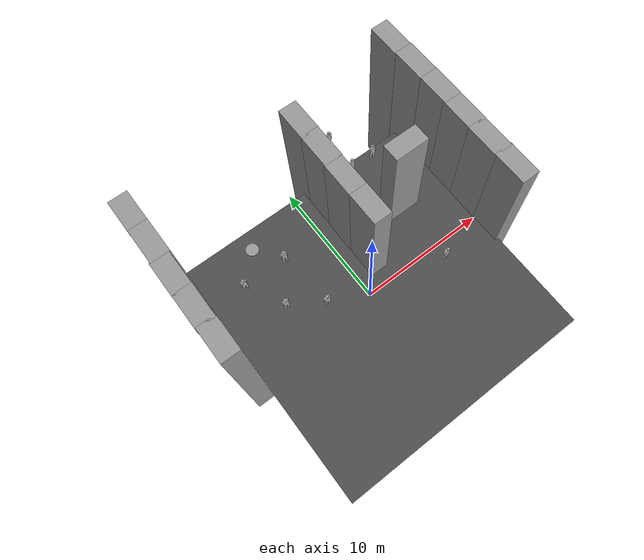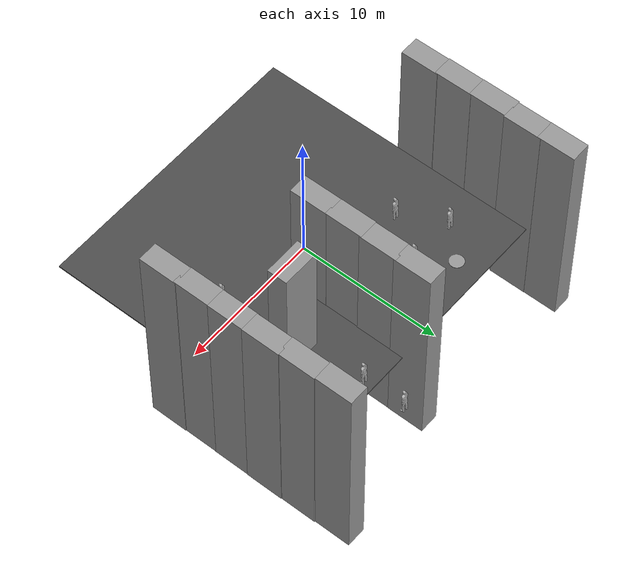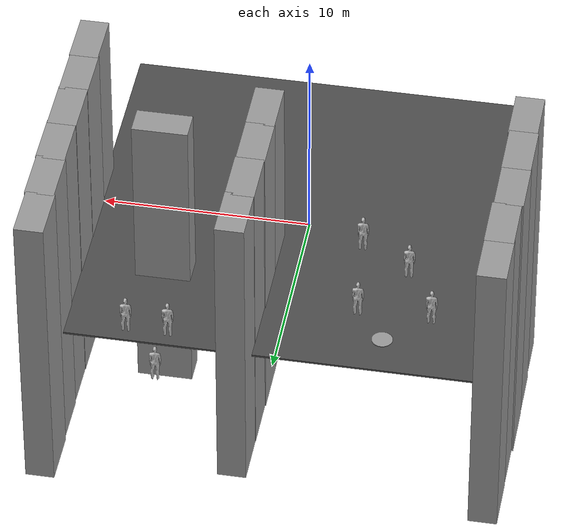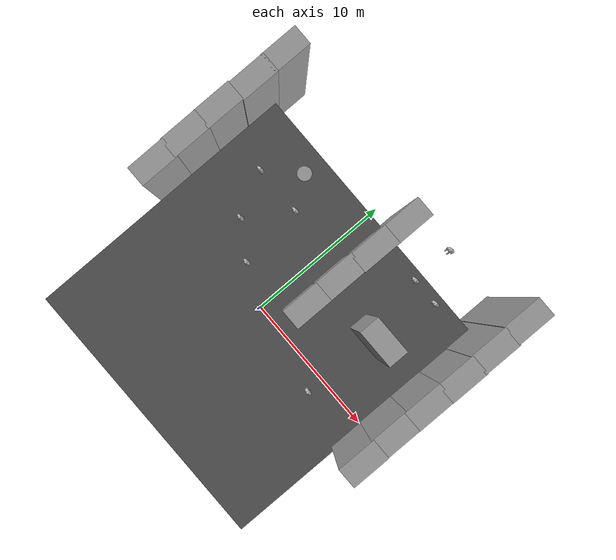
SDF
<sdf version="1.6">
 <model name="indoor_2">
  <link name="link_0_clone_2_clone_clone">
   <pose>-4.81876 7.91543 0.5 0 -0 0</pose>
   <inertial>
    <mass>0.0318769</mass>
    <inertia>
     <ixx>0.00199501</ixx>
     <ixy>0</ixy>
     <ixz>0</ixz>
     <iyy>0.00199501</iyy>
     <iyz>0</iyz>
     <izz>0.00398461</izz>
    </inertia>
   </inertial>
   <visual name="visual">
    <geometry><cylinder><radius>0.5</radius><length>0.0318771</length></cylinder></geometry>
    <material>
     <lighting>1</lighting>
     <script><uri>file://media/materials/scripts/gazebo.material</uri><name>Gazebo/Grey</name></script>
     <ambient>0.3 0.3 0.3 1</ambient>
     <diffuse>0.7 0.7 0.7 1</diffuse>
     <specular>0.01 0.01 0.01 1</specular>
     <emissive>0 0 0 1</emissive>
     <shader type="pixel"/>
    </material>
   </visual>
   <collision name="collision">
    <geometry><cylinder><radius>0.5</radius><length>0.031877</length></cylinder></geometry>
    <surface>
     <friction>
      <ode><mu>1</mu><mu2>1</mu2><fdir1>0 0 0</fdir1><slip1>0</slip1><slip2>0</slip2></ode>
      <torsional>
       <coefficient>1</coefficient>
       <patch_radius>0</patch_radius>
       <surface_radius>0</surface_radius>
       <use_patch_radius>1</use_patch_radius>
       <ode><slip>0</slip></ode>
      </torsional>
     </friction>
     <bounce><restitution_coefficient>0</restitution_coefficient><threshold>1e+06</threshold></bounce>
     <contact>
      <collide_without_contact>0</collide_without_contact>
      <collide_without_contact_bitmask>1</collide_without_contact_bitmask>
      <collide_bitmask>1</collide_bitmask>
      <ode>
       <soft_cfm>0</soft_cfm>
       <soft_erp>0.2</soft_erp>
       <kp>1e+13</kp>
       <kd>1</kd>
       <max_vel>0.01</max_vel>
       <min_depth>0</min_depth>
      </ode>
      <bullet>
       <split_impulse>1</split_impulse>
       <split_impulse_penetration_threshold>-0.01</split_impulse_penetration_threshold>
       <soft_cfm>0</soft_cfm>
       <soft_erp>0.2</soft_erp>
       <kp>1e+13</kp>
       <kd>1</kd>
      </bullet>
     </contact>
    </surface>
   </collision>
  </link>
  <link name="link_clone">
   <pose>-10.3255 8.50224 1.4 0 -0 0</pose>
   <inertial>
    <inertia><ixx>nan</ixx><ixy>0</ixy><ixz>0</ixz><iyy>nan</iyy><iyz>0</iyz><izz>nan</izz></inertia>
    <mass>0</mass>
   </inertial>
   <visual name="visual">
    <cast_shadows>0</cast_shadows>
    <geometry><box><size>1.37568 2.64508 15.4314</size></box></geometry>
    <material>
     <script>
      <uri>model://grey_wall/materials/scripts</uri>
      <uri>model://grey_wall/materials/textures</uri>
      <name>vrc/grey_wall</name>
     </script>
     <ambient>1 1 1 1</ambient>
     <diffuse>1 1 1 1</diffuse>
     <specular>0 0 0 1</specular>
     <emissive>0 0 0 1</emissive>
     <shader type="pixel"/>
    </material>
   </visual>
   <collision name="collision">
    <geometry><box><size>1.37568 2.64508 15.4314</size></box></geometry>
    <surface>
     <friction>
      <ode><mu>1</mu><mu2>1</mu2><fdir1>0 0 0</fdir1><slip1>0</slip1><slip2>0</slip2></ode>
      <torsional>
       <coefficient>1</coefficient>
       <patch_radius>0</patch_radius>
       <surface_radius>0</surface_radius>
       <use_patch_radius>1</use_patch_radius>
       <ode><slip>0</slip></ode>
      </torsional>
     </friction>
     <bounce><restitution_coefficient>0</restitution_coefficient><threshold>1e+06</threshold></bounce>
     <contact>
      <collide_without_contact>0</collide_without_contact>
      <collide_without_contact_bitmask>1</collide_without_contact_bitmask>
      <collide_bitmask>1</collide_bitmask>
      <ode>
       <soft_cfm>0</soft_cfm>
       <soft_erp>0.2</soft_erp>
       <kp>1e+13</kp>
       <kd>1</kd>
       <max_vel>0.01</max_vel>
       <min_depth>0</min_depth>
      </ode>
      <bullet>
       <split_impulse>1</split_impulse>
       <split_impulse_penetration_threshold>-0.01</split_impulse_penetration_threshold>
       <soft_cfm>0</soft_cfm>
       <soft_erp>0.2</soft_erp>
       <kp>1e+13</kp>
       <kd>1</kd>
      </bullet>
     </contact>
    </surface>
   </collision>
  </link>
  <link name="link_clone_0">
   <pose>-10.4018 5.91543 1.4 0 -0 0</pose>
   <inertial>
    <inertia><ixx>nan</ixx><ixy>0</ixy><ixz>0</ixz><iyy>nan</iyy><iyz>0</iyz><izz>nan</izz></inertia>
    <mass>0</mass>
   </inertial>
   <visual name="visual">
    <cast_shadows>0</cast_shadows>
    <geometry><box><size>1.37568 2.64508 15.4314</size></box></geometry>
    <material>
     <script>
      <uri>model://grey_wall/materials/scripts</uri>
      <uri>model://grey_wall/materials/textures</uri>
      <name>vrc/grey_wall</name>
     </script>
     <ambient>1 1 1 1</ambient>
     <diffuse>1 1 1 1</diffuse>
     <specular>0 0 0 1</specular>
     <emissive>0 0 0 1</emissive>
     <shader type="pixel"/>
    </material>
   </visual>
   <collision name="collision">
    <geometry><box><size>1.37568 2.64508 15.4314</size></box></geometry>
    <surface>
     <friction>
      <ode><mu>1</mu><mu2>1</mu2><fdir1>0 0 0</fdir1><slip1>0</slip1><slip2>0</slip2></ode>
      <torsional>
       <coefficient>1</coefficient>
       <patch_radius>0</patch_radius>
       <surface_radius>0</surface_radius>
       <use_patch_radius>1</use_patch_radius>
       <ode><slip>0</slip></ode>
      </torsional>
     </friction>
     <bounce><restitution_coefficient>0</restitution_coefficient><threshold>1e+06</threshold></bounce>
     <contact>
      <collide_without_contact>0</collide_without_contact>
      <collide_without_contact_bitmask>1</collide_without_contact_bitmask>
      <collide_bitmask>1</collide_bitmask>
      <ode>
       <soft_cfm>0</soft_cfm>
       <soft_erp>0.2</soft_erp>
       <kp>1e+13</kp>
       <kd>1</kd>
       <max_vel>0.01</max_vel>
       <min_depth>0</min_depth>
      </ode>
      <bullet>
       <split_impulse>1</split_impulse>
       <split_impulse_penetration_threshold>-0.01</split_impulse_penetration_threshold>
       <soft_cfm>0</soft_cfm>
       <soft_erp>0.2</soft_erp>
       <kp>1e+13</kp>
       <kd>1</kd>
      </bullet>
     </contact>
    </surface>
   </collision>
  </link>
  <link name="link_clone_1">
   <pose>-10.3874 3.38384 1.4 0 -0 0</pose>
   <inertial>
    <inertia><ixx>nan</ixx><ixy>0</ixy><ixz>0</ixz><iyy>nan</iyy><iyz>0</iyz><izz>nan</izz></inertia>
    <mass>0</mass>
   </inertial>
   <visual name="visual">
    <cast_shadows>0</cast_shadows>
    <geometry><box><size>1.37568 2.64508 15.4314</size></box></geometry>
    <material>
     <script>
      <uri>model://grey_wall/materials/scripts</uri>
      <uri>model://grey_wall/materials/textures</uri>
      <name>vrc/grey_wall</name>
     </script>
     <ambient>1 1 1 1</ambient>
     <diffuse>1 1 1 1</diffuse>
     <specular>0 0 0 1</specular>
     <emissive>0 0 0 1</emissive>
     <shader type="pixel"/>
    </material>
   </visual>
   <collision name="collision">
    <geometry><box><size>1.37568 2.64508 15.4314</size></box></geometry>
    <surface>
     <friction>
      <ode><mu>1</mu><mu2>1</mu2><fdir1>0 0 0</fdir1><slip1>0</slip1><slip2>0</slip2></ode>
      <torsional>
       <coefficient>1</coefficient>
       <patch_radius>0</patch_radius>
       <surface_radius>0</surface_radius>
       <use_patch_radius>1</use_patch_radius>
       <ode><slip>0</slip></ode>
      </torsional>
     </friction>
     <bounce><restitution_coefficient>0</restitution_coefficient><threshold>1e+06</threshold></bounce>
     <contact>
      <collide_without_contact>0</collide_without_contact>
      <collide_without_contact_bitmask>1</collide_without_contact_bitmask>
      <collide_bitmask>1</collide_bitmask>
      <ode>
       <soft_cfm>0</soft_cfm>
       <soft_erp>0.2</soft_erp>
       <kp>1e+13</kp>
       <kd>1</kd>
       <max_vel>0.01</max_vel>
       <min_depth>0</min_depth>
      </ode>
      <bullet>
       <split_impulse>1</split_impulse>
       <split_impulse_penetration_threshold>-0.01</split_impulse_penetration_threshold>
       <soft_cfm>0</soft_cfm>
       <soft_erp>0.2</soft_erp>
       <kp>1e+13</kp>
       <kd>1</kd>
      </bullet>
     </contact>
    </surface>
   </collision>
  </link>
  <link name="link_clone_16">
   <pose>-10.3392 10.9154 1.4 0 -0 0</pose>
   <inertial>
    <inertia><ixx>nan</ixx><ixy>0</ixy><ixz>0</ixz><iyy>nan</iyy><iyz>0</iyz><izz>nan</izz></inertia>
    <mass>0</mass>
   </inertial>
   <visual name="visual">
    <cast_shadows>0</cast_shadows>
    <geometry><box><size>1.37568 2.64508 15.4314</size></box></geometry>
    <material>
     <script>
      <uri>model://grey_wall/materials/scripts</uri>
      <uri>model://grey_wall/materials/textures</uri>
      <name>vrc/grey_wall</name>
     </script>
     <ambient>1 1 1 1</ambient>
     <diffuse>1 1 1 1</diffuse>
     <specular>0 0 0 1</specular>
     <emissive>0 0 0 1</emissive>
     <shader type="pixel"/>
    </material>
   </visual>
   <collision name="collision">
    <geometry><box><size>1.37568 2.64508 15.4314</size></box></geometry>
    <surface>
     <friction>
      <ode><mu>1</mu><mu2>1</mu2><fdir1>0 0 0</fdir1><slip1>0</slip1><slip2>0</slip2></ode>
      <torsional>
       <coefficient>1</coefficient>
       <patch_radius>0</patch_radius>
       <surface_radius>0</surface_radius>
       <use_patch_radius>1</use_patch_radius>
       <ode><slip>0</slip></ode>
      </torsional>
     </friction>
     <bounce><restitution_coefficient>0</restitution_coefficient><threshold>1e+06</threshold></bounce>
     <contact>
      <collide_without_contact>0</collide_without_contact>
      <collide_without_contact_bitmask>1</collide_without_contact_bitmask>
      <collide_bitmask>1</collide_bitmask>
      <ode>
       <soft_cfm>0</soft_cfm>
       <soft_erp>0.2</soft_erp>
       <kp>1e+13</kp>
       <kd>1</kd>
       <max_vel>0.01</max_vel>
       <min_depth>0</min_depth>
      </ode>
      <bullet>
       <split_impulse>1</split_impulse>
       <split_impulse_penetration_threshold>-0.01</split_impulse_penetration_threshold>
       <soft_cfm>0</soft_cfm>
       <soft_erp>0.2</soft_erp>
       <kp>1e+13</kp>
       <kd>1</kd>
      </bullet>
     </contact>
    </surface>
   </collision>
  </link>
  <link name="link_clone_17_clone_clone_0_clone">
   <pose>6.18124 4.331 1.4 0 0 -1.56938</pose>
   <inertial>
    <inertia><ixx>nan</ixx><ixy>0</ixy><ixz>0</ixz><iyy>nan</iyy><iyz>0</iyz><izz>nan</izz></inertia>
    <mass>0</mass>
   </inertial>
   <visual name="visual">
    <cast_shadows>0</cast_shadows>
    <geometry><box><size>1.37568 2.64508 15.4314</size></box></geometry>
    <material>
     <script>
      <uri>model://grey_wall/materials/scripts</uri>
      <uri>model://grey_wall/materials/textures</uri>
      <name>vrc/grey_wall</name>
     </script>
     <ambient>1 1 1 1</ambient>
     <diffuse>1 1 1 1</diffuse>
     <specular>0 0 0 1</specular>
     <emissive>0 0 0 1</emissive>
     <shader type="pixel"/>
    </material>
   </visual>
   <collision name="collision">
    <geometry><box><size>1.37568 2.64508 15.4314</size></box></geometry>
    <surface>
     <friction>
      <ode><mu>1</mu><mu2>1</mu2><fdir1>0 0 0</fdir1><slip1>0</slip1><slip2>0</slip2></ode>
      <torsional>
       <coefficient>1</coefficient>
       <patch_radius>0</patch_radius>
       <surface_radius>0</surface_radius>
       <use_patch_radius>1</use_patch_radius>
       <ode><slip>0</slip></ode>
      </torsional>
     </friction>
     <bounce><restitution_coefficient>0</restitution_coefficient><threshold>1e+06</threshold></bounce>
     <contact>
      <collide_without_contact>0</collide_without_contact>
      <collide_without_contact_bitmask>1</collide_without_contact_bitmask>
      <collide_bitmask>1</collide_bitmask>
      <ode>
       <soft_cfm>0</soft_cfm>
       <soft_erp>0.2</soft_erp>
       <kp>1e+13</kp>
       <kd>1</kd>
       <max_vel>0.01</max_vel>
       <min_depth>0</min_depth>
      </ode>
      <bullet>
       <split_impulse>1</split_impulse>
       <split_impulse_penetration_threshold>-0.01</split_impulse_penetration_threshold>
       <soft_cfm>0</soft_cfm>
       <soft_erp>0.2</soft_erp>
       <kp>1e+13</kp>
       <kd>1</kd>
      </bullet>
     </contact>
    </surface>
   </collision>
  </link>
  <link name="link_clone_2">
   <pose>-10.3438 0.915432 1.4 0 -0 0</pose>
   <inertial>
    <inertia><ixx>nan</ixx><ixy>0</ixy><ixz>0</ixz><iyy>nan</iyy><iyz>0</iyz><izz>nan</izz></inertia>
    <mass>0</mass>
   </inertial>
   <visual name="visual">
    <cast_shadows>0</cast_shadows>
    <geometry><box><size>1.37568 2.64508 15.4314</size></box></geometry>
    <material>
     <script>
      <uri>model://grey_wall/materials/scripts</uri>
      <uri>model://grey_wall/materials/textures</uri>
      <name>vrc/grey_wall</name>
     </script>
     <ambient>1 1 1 1</ambient>
     <diffuse>1 1 1 1</diffuse>
     <specular>0 0 0 1</specular>
     <emissive>0 0 0 1</emissive>
     <shader type="pixel"/>
    </material>
   </visual>
   <collision name="collision">
    <geometry><box><size>1.37568 2.64508 15.4314</size></box></geometry>
    <surface>
     <friction>
      <ode><mu>1</mu><mu2>1</mu2><fdir1>0 0 0</fdir1><slip1>0</slip1><slip2>0</slip2></ode>
      <torsional>
       <coefficient>1</coefficient>
       <patch_radius>0</patch_radius>
       <surface_radius>0</surface_radius>
       <use_patch_radius>1</use_patch_radius>
       <ode><slip>0</slip></ode>
      </torsional>
     </friction>
     <bounce><restitution_coefficient>0</restitution_coefficient><threshold>1e+06</threshold></bounce>
     <contact>
      <collide_without_contact>0</collide_without_contact>
      <collide_without_contact_bitmask>1</collide_without_contact_bitmask>
      <collide_bitmask>1</collide_bitmask>
      <ode>
       <soft_cfm>0</soft_cfm>
       <soft_erp>0.2</soft_erp>
       <kp>1e+13</kp>
       <kd>1</kd>
       <max_vel>0.01</max_vel>
       <min_depth>0</min_depth>
      </ode>
      <bullet>
       <split_impulse>1</split_impulse>
       <split_impulse_penetration_threshold>-0.01</split_impulse_penetration_threshold>
       <soft_cfm>0</soft_cfm>
       <soft_erp>0.2</soft_erp>
       <kp>1e+13</kp>
       <kd>1</kd>
      </bullet>
     </contact>
    </surface>
   </collision>
  </link>
  <link name="link_clone_6_clone_5_clone">
   <pose>1.75585 9.91543 1.4 0 -0 0</pose>
   <inertial>
    <inertia><ixx>nan</ixx><ixy>0</ixy><ixz>0</ixz><iyy>nan</iyy><iyz>0</iyz><izz>nan</izz></inertia>
    <mass>0</mass>
   </inertial>
   <visual name="visual">
    <cast_shadows>0</cast_shadows>
    <geometry><box><size>1.37568 2.64508 15.4314</size></box></geometry>
    <material>
     <script>
      <uri>model://grey_wall/materials/scripts</uri>
      <uri>model://grey_wall/materials/textures</uri>
      <name>vrc/grey_wall</name>
     </script>
     <ambient>1 1 1 1</ambient>
     <diffuse>1 1 1 1</diffuse>
     <specular>0 0 0 1</specular>
     <emissive>0 0 0 1</emissive>
     <shader type="pixel"/>
    </material>
   </visual>
   <collision name="collision">
    <geometry><box><size>1.37568 2.64508 15.4314</size></box></geometry>
    <surface>
     <friction>
      <ode><mu>1</mu><mu2>1</mu2><fdir1>0 0 0</fdir1><slip1>0</slip1><slip2>0</slip2></ode>
      <torsional>
       <coefficient>1</coefficient>
       <patch_radius>0</patch_radius>
       <surface_radius>0</surface_radius>
       <use_patch_radius>1</use_patch_radius>
       <ode><slip>0</slip></ode>
      </torsional>
     </friction>
     <bounce><restitution_coefficient>0</restitution_coefficient><threshold>1e+06</threshold></bounce>
     <contact>
      <collide_without_contact>0</collide_without_contact>
      <collide_without_contact_bitmask>1</collide_without_contact_bitmask>
      <collide_bitmask>1</collide_bitmask>
      <ode>
       <soft_cfm>0</soft_cfm>
       <soft_erp>0.2</soft_erp>
       <kp>1e+13</kp>
       <kd>1</kd>
       <max_vel>0.01</max_vel>
       <min_depth>0</min_depth>
      </ode>
      <bullet>
       <split_impulse>1</split_impulse>
       <split_impulse_penetration_threshold>-0.01</split_impulse_penetration_threshold>
       <soft_cfm>0</soft_cfm>
       <soft_erp>0.2</soft_erp>
       <kp>1e+13</kp>
       <kd>1</kd>
      </bullet>
     </contact>
    </surface>
   </collision>
  </link>
  <link name="link_clone_6_clone_5_clone_0">
   <pose>1.74107 7.42836 1.4 0 -0 0</pose>
   <inertial>
    <inertia><ixx>nan</ixx><ixy>0</ixy><ixz>0</ixz><iyy>nan</iyy><iyz>0</iyz><izz>nan</izz></inertia>
    <mass>0</mass>
   </inertial>
   <visual name="visual">
    <cast_shadows>0</cast_shadows>
    <geometry><box><size>1.37568 2.64508 15.4314</size></box></geometry>
    <material>
     <script>
      <uri>model://grey_wall/materials/scripts</uri>
      <uri>model://grey_wall/materials/textures</uri>
      <name>vrc/grey_wall</name>
     </script>
     <ambient>1 1 1 1</ambient>
     <diffuse>1 1 1 1</diffuse>
     <specular>0 0 0 1</specular>
     <emissive>0 0 0 1</emissive>
     <shader type="pixel"/>
    </material>
   </visual>
   <collision name="collision">
    <geometry><box><size>1.37568 2.64508 15.4314</size></box></geometry>
    <surface>
     <friction>
      <ode><mu>1</mu><mu2>1</mu2><fdir1>0 0 0</fdir1><slip1>0</slip1><slip2>0</slip2></ode>
      <torsional>
       <coefficient>1</coefficient>
       <patch_radius>0</patch_radius>
       <surface_radius>0</surface_radius>
       <use_patch_radius>1</use_patch_radius>
       <ode><slip>0</slip></ode>
      </torsional>
     </friction>
     <bounce><restitution_coefficient>0</restitution_coefficient><threshold>1e+06</threshold></bounce>
     <contact>
      <collide_without_contact>0</collide_without_contact>
      <collide_without_contact_bitmask>1</collide_without_contact_bitmask>
      <collide_bitmask>1</collide_bitmask>
      <ode>
       <soft_cfm>0</soft_cfm>
       <soft_erp>0.2</soft_erp>
       <kp>1e+13</kp>
       <kd>1</kd>
       <max_vel>0.01</max_vel>
       <min_depth>0</min_depth>
      </ode>
      <bullet>
       <split_impulse>1</split_impulse>
       <split_impulse_penetration_threshold>-0.01</split_impulse_penetration_threshold>
       <soft_cfm>0</soft_cfm>
       <soft_erp>0.2</soft_erp>
       <kp>1e+13</kp>
       <kd>1</kd>
      </bullet>
     </contact>
    </surface>
   </collision>
  </link>
  <link name="link_clone_6_clone_5_clone_0_clone">
   <pose>1.70315 4.91543 1.4 0 -0 0</pose>
   <inertial>
    <inertia><ixx>nan</ixx><ixy>0</ixy><ixz>0</ixz><iyy>nan</iyy><iyz>0</iyz><izz>nan</izz></inertia>
    <mass>0</mass>
   </inertial>
   <visual name="visual">
    <cast_shadows>0</cast_shadows>
    <geometry><box><size>1.37568 2.64508 15.4314</size></box></geometry>
    <material>
     <script>
      <uri>model://grey_wall/materials/scripts</uri>
      <uri>model://grey_wall/materials/textures</uri>
      <name>vrc/grey_wall</name>
     </script>
     <ambient>1 1 1 1</ambient>
     <diffuse>1 1 1 1</diffuse>
     <specular>0 0 0 1</specular>
     <emissive>0 0 0 1</emissive>
     <shader type="pixel"/>
    </material>
   </visual>
   <collision name="collision">
    <geometry><box><size>1.37568 2.64508 15.4314</size></box></geometry>
    <surface>
     <friction>
      <ode><mu>1</mu><mu2>1</mu2><fdir1>0 0 0</fdir1><slip1>0</slip1><slip2>0</slip2></ode>
      <torsional>
       <coefficient>1</coefficient>
       <patch_radius>0</patch_radius>
       <surface_radius>0</surface_radius>
       <use_patch_radius>1</use_patch_radius>
       <ode><slip>0</slip></ode>
      </torsional>
     </friction>
     <bounce><restitution_coefficient>0</restitution_coefficient><threshold>1e+06</threshold></bounce>
     <contact>
      <collide_without_contact>0</collide_without_contact>
      <collide_without_contact_bitmask>1</collide_without_contact_bitmask>
      <collide_bitmask>1</collide_bitmask>
      <ode>
       <soft_cfm>0</soft_cfm>
       <soft_erp>0.2</soft_erp>
       <kp>1e+13</kp>
       <kd>1</kd>
       <max_vel>0.01</max_vel>
       <min_depth>0</min_depth>
      </ode>
      <bullet>
       <split_impulse>1</split_impulse>
       <split_impulse_penetration_threshold>-0.01</split_impulse_penetration_threshold>
       <soft_cfm>0</soft_cfm>
       <soft_erp>0.2</soft_erp>
       <kp>1e+13</kp>
       <kd>1</kd>
      </bullet>
     </contact>
    </surface>
   </collision>
  </link>
  <link name="link_clone_6_clone_5_clone_0_clone_0">
   <pose>1.71262 2.36889 1.4 0 -0 0</pose>
   <inertial>
    <inertia><ixx>nan</ixx><ixy>0</ixy><ixz>0</ixz><iyy>nan</iyy><iyz>0</iyz><izz>nan</izz></inertia>
    <mass>0</mass>
   </inertial>
   <visual name="visual">
    <cast_shadows>0</cast_shadows>
    <geometry><box><size>1.37568 2.64508 15.4314</size></box></geometry>
    <material>
     <script>
      <uri>model://grey_wall/materials/scripts</uri>
      <uri>model://grey_wall/materials/textures</uri>
      <name>vrc/grey_wall</name>
     </script>
     <ambient>1 1 1 1</ambient>
     <diffuse>1 1 1 1</diffuse>
     <specular>0 0 0 1</specular>
     <emissive>0 0 0 1</emissive>
     <shader type="pixel"/>
    </material>
   </visual>
   <collision name="collision">
    <geometry><box><size>1.37568 2.64508 15.4314</size></box></geometry>
    <surface>
     <friction>
      <ode><mu>1</mu><mu2>1</mu2><fdir1>0 0 0</fdir1><slip1>0</slip1><slip2>0</slip2></ode>
      <torsional>
       <coefficient>1</coefficient>
       <patch_radius>0</patch_radius>
       <surface_radius>0</surface_radius>
       <use_patch_radius>1</use_patch_radius>
       <ode><slip>0</slip></ode>
      </torsional>
     </friction>
     <bounce><restitution_coefficient>0</restitution_coefficient><threshold>1e+06</threshold></bounce>
     <contact>
      <collide_without_contact>0</collide_without_contact>
      <collide_without_contact_bitmask>1</collide_without_contact_bitmask>
      <collide_bitmask>1</collide_bitmask>
      <ode>
       <soft_cfm>0</soft_cfm>
       <soft_erp>0.2</soft_erp>
       <kp>1e+13</kp>
       <kd>1</kd>
       <max_vel>0.01</max_vel>
       <min_depth>0</min_depth>
      </ode>
      <bullet>
       <split_impulse>1</split_impulse>
       <split_impulse_penetration_threshold>-0.01</split_impulse_penetration_threshold>
       <soft_cfm>0</soft_cfm>
       <soft_erp>0.2</soft_erp>
       <kp>1e+13</kp>
       <kd>1</kd>
      </bullet>
     </contact>
    </surface>
   </collision>
  </link>
  <link name="link_clone_6_clone_clone_1">
   <pose>10.7587 -1.08457 1.4 0 -0 0</pose>
   <inertial>
    <inertia><ixx>nan</ixx><ixy>0</ixy><ixz>0</ixz><iyy>nan</iyy><iyz>0</iyz><izz>nan</izz></inertia>
    <mass>0</mass>
   </inertial>
   <visual name="visual">
    <cast_shadows>0</cast_shadows>
    <geometry><box><size>1.37568 2.64508 15.4314</size></box></geometry>
    <material>
     <script>
      <uri>model://grey_wall/materials/scripts</uri>
      <uri>model://grey_wall/materials/textures</uri>
      <name>vrc/grey_wall</name>
     </script>
     <ambient>1 1 1 1</ambient>
     <diffuse>1 1 1 1</diffuse>
     <specular>0 0 0 1</specular>
     <emissive>0 0 0 1</emissive>
     <shader type="pixel"/>
    </material>
   </visual>
   <collision name="collision">
    <geometry><box><size>1.37568 2.64508 15.4314</size></box></geometry>
    <surface>
     <friction>
      <ode><mu>1</mu><mu2>1</mu2><fdir1>0 0 0</fdir1><slip1>0</slip1><slip2>0</slip2></ode>
      <torsional>
       <coefficient>1</coefficient>
       <patch_radius>0</patch_radius>
       <surface_radius>0</surface_radius>
       <use_patch_radius>1</use_patch_radius>
       <ode><slip>0</slip></ode>
      </torsional>
     </friction>
     <bounce><restitution_coefficient>0</restitution_coefficient><threshold>1e+06</threshold></bounce>
     <contact>
      <collide_without_contact>0</collide_without_contact>
      <collide_without_contact_bitmask>1</collide_without_contact_bitmask>
      <collide_bitmask>1</collide_bitmask>
      <ode>
       <soft_cfm>0</soft_cfm>
       <soft_erp>0.2</soft_erp>
       <kp>1e+13</kp>
       <kd>1</kd>
       <max_vel>0.01</max_vel>
       <min_depth>0</min_depth>
      </ode>
      <bullet>
       <split_impulse>1</split_impulse>
       <split_impulse_penetration_threshold>-0.01</split_impulse_penetration_threshold>
       <soft_cfm>0</soft_cfm>
       <soft_erp>0.2</soft_erp>
       <kp>1e+13</kp>
       <kd>1</kd>
      </bullet>
     </contact>
    </surface>
   </collision>
  </link>
  <link name="link_clone_6_clone_clone_2">
   <pose>10.7249 1.40828 1.4 0 -0 0</pose>
   <inertial>
    <inertia><ixx>nan</ixx><ixy>0</ixy><ixz>0</ixz><iyy>nan</iyy><iyz>0</iyz><izz>nan</izz></inertia>
    <mass>0</mass>
   </inertial>
   <visual name="visual">
    <cast_shadows>0</cast_shadows>
    <geometry><box><size>1.37568 2.64508 15.4314</size></box></geometry>
    <material>
     <script>
      <uri>model://grey_wall/materials/scripts</uri>
      <uri>model://grey_wall/materials/textures</uri>
      <name>vrc/grey_wall</name>
     </script>
     <ambient>1 1 1 1</ambient>
     <diffuse>1 1 1 1</diffuse>
     <specular>0 0 0 1</specular>
     <emissive>0 0 0 1</emissive>
     <shader type="pixel"/>
    </material>
   </visual>
   <collision name="collision">
    <geometry><box><size>1.37568 2.64508 15.4314</size></box></geometry>
    <surface>
     <friction>
      <ode><mu>1</mu><mu2>1</mu2><fdir1>0 0 0</fdir1><slip1>0</slip1><slip2>0</slip2></ode>
      <torsional>
       <coefficient>1</coefficient>
       <patch_radius>0</patch_radius>
       <surface_radius>0</surface_radius>
       <use_patch_radius>1</use_patch_radius>
       <ode><slip>0</slip></ode>
      </torsional>
     </friction>
     <bounce><restitution_coefficient>0</restitution_coefficient><threshold>1e+06</threshold></bounce>
     <contact>
      <collide_without_contact>0</collide_without_contact>
      <collide_without_contact_bitmask>1</collide_without_contact_bitmask>
      <collide_bitmask>1</collide_bitmask>
      <ode>
       <soft_cfm>0</soft_cfm>
       <soft_erp>0.2</soft_erp>
       <kp>1e+13</kp>
       <kd>1</kd>
       <max_vel>0.01</max_vel>
       <min_depth>0</min_depth>
      </ode>
      <bullet>
       <split_impulse>1</split_impulse>
       <split_impulse_penetration_threshold>-0.01</split_impulse_penetration_threshold>
       <soft_cfm>0</soft_cfm>
       <soft_erp>0.2</soft_erp>
       <kp>1e+13</kp>
       <kd>1</kd>
      </bullet>
     </contact>
    </surface>
   </collision>
  </link>
  <link name="link_clone_6_clone_clone_3">
   <pose>10.7387 3.91543 1.4 0 -0 0</pose>
   <inertial>
    <inertia><ixx>nan</ixx><ixy>0</ixy><ixz>0</ixz><iyy>nan</iyy><iyz>0</iyz><izz>nan</izz></inertia>
    <mass>0</mass>
   </inertial>
   <visual name="visual">
    <cast_shadows>0</cast_shadows>
    <geometry><box><size>1.37568 2.64508 15.4314</size></box></geometry>
    <material>
     <script>
      <uri>model://grey_wall/materials/scripts</uri>
      <uri>model://grey_wall/materials/textures</uri>
      <name>vrc/grey_wall</name>
     </script>
     <ambient>1 1 1 1</ambient>
     <diffuse>1 1 1 1</diffuse>
     <specular>0 0 0 1</specular>
     <emissive>0 0 0 1</emissive>
     <shader type="pixel"/>
    </material>
   </visual>
   <collision name="collision">
    <geometry><box><size>1.37568 2.64508 15.4314</size></box></geometry>
    <surface>
     <friction>
      <ode><mu>1</mu><mu2>1</mu2><fdir1>0 0 0</fdir1><slip1>0</slip1><slip2>0</slip2></ode>
      <torsional>
       <coefficient>1</coefficient>
       <patch_radius>0</patch_radius>
       <surface_radius>0</surface_radius>
       <use_patch_radius>1</use_patch_radius>
       <ode><slip>0</slip></ode>
      </torsional>
     </friction>
     <bounce><restitution_coefficient>0</restitution_coefficient><threshold>1e+06</threshold></bounce>
     <contact>
      <collide_without_contact>0</collide_without_contact>
      <collide_without_contact_bitmask>1</collide_without_contact_bitmask>
      <collide_bitmask>1</collide_bitmask>
      <ode>
       <soft_cfm>0</soft_cfm>
       <soft_erp>0.2</soft_erp>
       <kp>1e+13</kp>
       <kd>1</kd>
       <max_vel>0.01</max_vel>
       <min_depth>0</min_depth>
      </ode>
      <bullet>
       <split_impulse>1</split_impulse>
       <split_impulse_penetration_threshold>-0.01</split_impulse_penetration_threshold>
       <soft_cfm>0</soft_cfm>
       <soft_erp>0.2</soft_erp>
       <kp>1e+13</kp>
       <kd>1</kd>
      </bullet>
     </contact>
    </surface>
   </collision>
  </link>
  <link name="link_clone_6_clone_clone_4">
   <pose>10.7585 6.40522 1.4 0 -0 0</pose>
   <inertial>
    <inertia><ixx>nan</ixx><ixy>0</ixy><ixz>0</ixz><iyy>nan</iyy><iyz>0</iyz><izz>nan</izz></inertia>
    <mass>0</mass>
   </inertial>
   <visual name="visual">
    <cast_shadows>0</cast_shadows>
    <geometry><box><size>1.37568 2.64508 15.4314</size></box></geometry>
    <material>
     <script>
      <uri>model://grey_wall/materials/scripts</uri>
      <uri>model://grey_wall/materials/textures</uri>
      <name>vrc/grey_wall</name>
     </script>
     <ambient>1 1 1 1</ambient>
     <diffuse>1 1 1 1</diffuse>
     <specular>0 0 0 1</specular>
     <emissive>0 0 0 1</emissive>
     <shader type="pixel"/>
    </material>
   </visual>
   <collision name="collision">
    <geometry><box><size>1.37568 2.64508 15.4314</size></box></geometry>
    <surface>
     <friction>
      <ode><mu>1</mu><mu2>1</mu2><fdir1>0 0 0</fdir1><slip1>0</slip1><slip2>0</slip2></ode>
      <torsional>
       <coefficient>1</coefficient>
       <patch_radius>0</patch_radius>
       <surface_radius>0</surface_radius>
       <use_patch_radius>1</use_patch_radius>
       <ode><slip>0</slip></ode>
      </torsional>
     </friction>
     <bounce><restitution_coefficient>0</restitution_coefficient><threshold>1e+06</threshold></bounce>
     <contact>
      <collide_without_contact>0</collide_without_contact>
      <collide_without_contact_bitmask>1</collide_without_contact_bitmask>
      <collide_bitmask>1</collide_bitmask>
      <ode>
       <soft_cfm>0</soft_cfm>
       <soft_erp>0.2</soft_erp>
       <kp>1e+13</kp>
       <kd>1</kd>
       <max_vel>0.01</max_vel>
       <min_depth>0</min_depth>
      </ode>
      <bullet>
       <split_impulse>1</split_impulse>
       <split_impulse_penetration_threshold>-0.01</split_impulse_penetration_threshold>
       <soft_cfm>0</soft_cfm>
       <soft_erp>0.2</soft_erp>
       <kp>1e+13</kp>
       <kd>1</kd>
      </bullet>
     </contact>
    </surface>
   </collision>
  </link>
  <link name="link_clone_6_clone_clone_5">
   <pose>10.7257 8.91543 1.4 0 -0 0</pose>
   <inertial>
    <inertia><ixx>nan</ixx><ixy>0</ixy><ixz>0</ixz><iyy>nan</iyy><iyz>0</iyz><izz>nan</izz></inertia>
    <mass>0</mass>
   </inertial>
   <visual name="visual">
    <cast_shadows>0</cast_shadows>
    <geometry><box><size>1.37568 2.64508 15.4314</size></box></geometry>
    <material>
     <script>
      <uri>model://grey_wall/materials/scripts</uri>
      <uri>model://grey_wall/materials/textures</uri>
      <name>vrc/grey_wall</name>
     </script>
     <ambient>1 1 1 1</ambient>
     <diffuse>1 1 1 1</diffuse>
     <specular>0 0 0 1</specular>
     <emissive>0 0 0 1</emissive>
     <shader type="pixel"/>
    </material>
   </visual>
   <collision name="collision">
    <geometry><box><size>1.37568 2.64508 15.4314</size></box></geometry>
    <surface>
     <friction>
      <ode><mu>1</mu><mu2>1</mu2><fdir1>0 0 0</fdir1><slip1>0</slip1><slip2>0</slip2></ode>
      <torsional>
       <coefficient>1</coefficient>
       <patch_radius>0</patch_radius>
       <surface_radius>0</surface_radius>
       <use_patch_radius>1</use_patch_radius>
       <ode><slip>0</slip></ode>
      </torsional>
     </friction>
     <bounce><restitution_coefficient>0</restitution_coefficient><threshold>1e+06</threshold></bounce>
     <contact>
      <collide_without_contact>0</collide_without_contact>
      <collide_without_contact_bitmask>1</collide_without_contact_bitmask>
      <collide_bitmask>1</collide_bitmask>
      <ode>
       <soft_cfm>0</soft_cfm>
       <soft_erp>0.2</soft_erp>
       <kp>1e+13</kp>
       <kd>1</kd>
       <max_vel>0.01</max_vel>
       <min_depth>0</min_depth>
      </ode>
      <bullet>
       <split_impulse>1</split_impulse>
       <split_impulse_penetration_threshold>-0.01</split_impulse_penetration_threshold>
       <soft_cfm>0</soft_cfm>
       <soft_erp>0.2</soft_erp>
       <kp>1e+13</kp>
       <kd>1</kd>
      </bullet>
     </contact>
    </surface>
   </collision>
  </link>
  <link name="link_clone_6_clone_clone_6">
   <pose>10.6696 11.4782 1.4 0 -0 0</pose>
   <inertial>
    <inertia><ixx>nan</ixx><ixy>0</ixy><ixz>0</ixz><iyy>nan</iyy><iyz>0</iyz><izz>nan</izz></inertia>
    <mass>0</mass>
   </inertial>
   <visual name="visual">
    <cast_shadows>0</cast_shadows>
    <geometry><box><size>1.37568 2.64508 15.4314</size></box></geometry>
    <material>
     <script>
      <uri>model://grey_wall/materials/scripts</uri>
      <uri>model://grey_wall/materials/textures</uri>
      <name>vrc/grey_wall</name>
     </script>
     <ambient>1 1 1 1</ambient>
     <diffuse>1 1 1 1</diffuse>
     <specular>0 0 0 1</specular>
     <emissive>0 0 0 1</emissive>
     <shader type="pixel"/>
    </material>
   </visual>
   <collision name="collision">
    <geometry><box><size>1.37568 2.64508 15.4314</size></box></geometry>
    <surface>
     <friction>
      <ode><mu>1</mu><mu2>1</mu2><fdir1>0 0 0</fdir1><slip1>0</slip1><slip2>0</slip2></ode>
      <torsional>
       <coefficient>1</coefficient>
       <patch_radius>0</patch_radius>
       <surface_radius>0</surface_radius>
       <use_patch_radius>1</use_patch_radius>
       <ode><slip>0</slip></ode>
      </torsional>
     </friction>
     <bounce><restitution_coefficient>0</restitution_coefficient><threshold>1e+06</threshold></bounce>
     <contact>
      <collide_without_contact>0</collide_without_contact>
      <collide_without_contact_bitmask>1</collide_without_contact_bitmask>
      <collide_bitmask>1</collide_bitmask>
      <ode>
       <soft_cfm>0</soft_cfm>
       <soft_erp>0.2</soft_erp>
       <kp>1e+13</kp>
       <kd>1</kd>
       <max_vel>0.01</max_vel>
       <min_depth>0</min_depth>
      </ode>
      <bullet>
       <split_impulse>1</split_impulse>
       <split_impulse_penetration_threshold>-0.01</split_impulse_penetration_threshold>
       <soft_cfm>0</soft_cfm>
       <soft_erp>0.2</soft_erp>
       <kp>1e+13</kp>
       <kd>1</kd>
      </bullet>
     </contact>
    </surface>
   </collision>
  </link>
  <model name="asphalt_plane">
   <static>1</static>
   <link name="link">
    <collision name="collision"><geometry><box><size>20 20 0.1</size></box></geometry></collision>
    <visual name="visual">
     <cast_shadows>0</cast_shadows>
     <geometry><box><size>20 20 0.1</size></box></geometry>
     <material>
      <script>
       <uri>model://asphalt_plane/materials/scripts</uri>
       <uri>model://asphalt_plane/materials/textures</uri>
       <name>vrc/asphalt</name>
      </script>
     </material>
    </visual>
   </link>
   <pose>0.360553 -0.470131 0 0 -0 0</pose>
  </model>
  <model name="person_standing">
   <link name="link">
    <inertial>
     <pose>0 -0.1 0.95 0 -0 0</pose>
     <mass>80</mass>
     <inertia><ixx>24.88</ixx><ixy>0</ixy><ixz>0</ixz><iyy>25.73</iyy><iyz>0</iyz><izz>2.48</izz></inertia>
    </inertial>
    <collision name="bottom">
     <pose>0 -0.1 0.01 0 -0 0</pose>
     <geometry><box><size>0.5 0.35 0.02</size></box></geometry>
    </collision>
    <collision name="person">
     <pose>0 0 0.02 0.04 -0 0</pose>
     <geometry><mesh><uri>model://person_standing/meshes/standing.dae</uri></mesh></geometry>
    </collision>
    <visual name="visual">
     <pose>0 0 0.02 0.04 -0 0</pose>
     <geometry><mesh><uri>model://person_standing/meshes/standing.dae</uri></mesh></geometry>
    </visual>
   </link>
   <pose>-6.81876 5.91543 0 0 -0 0</pose>
  </model>
  <model name="person_standing_clone">
   <link name="link">
    <inertial>
     <pose>0 -0.1 0.95 0 -0 0</pose>
     <mass>80</mass>
     <inertia><ixx>24.88</ixx><ixy>0</ixy><ixz>0</ixz><iyy>25.73</iyy><iyz>0</iyz><izz>2.48</izz></inertia>
    </inertial>
    <collision name="bottom">
     <pose>0 -0.1 0.01 0 -0 0</pose>
     <geometry><box><size>0.5 0.35 0.02</size></box></geometry>
    </collision>
    <collision name="person">
     <pose>0 0 0.02 0.04 -0 0</pose>
     <geometry><mesh><uri>model://person_standing/meshes/standing.dae</uri></mesh></geometry>
    </collision>
    <visual name="visual">
     <pose>0 0 0.02 0.04 -0 0</pose>
     <geometry><mesh><uri>model://person_standing/meshes/standing.dae</uri></mesh></geometry>
    </visual>
   </link>
   <pose>-3.32158 5.91543 0 0 -0 0</pose>
  </model>
  <model name="person_standing_clone_0">
   <link name="link">
    <inertial>
     <pose>0 -0.1 0.95 0 -0 0</pose>
     <mass>80</mass>
     <inertia><ixx>24.88</ixx><ixy>0</ixy><ixz>0</ixz><iyy>25.73</iyy><iyz>0</iyz><izz>2.48</izz></inertia>
    </inertial>
    <collision name="bottom">
     <pose>0 -0.1 0.01 0 -0 0</pose>
     <geometry><box><size>0.5 0.35 0.02</size></box></geometry>
    </collision>
    <collision name="person">
     <pose>0 0 0.02 0.04 -0 0</pose>
     <geometry><mesh><uri>model://person_standing/meshes/standing.dae</uri></mesh></geometry>
    </collision>
    <visual name="visual">
     <pose>0 0 0.02 0.04 -0 0</pose>
     <geometry><mesh><uri>model://person_standing/meshes/standing.dae</uri></mesh></geometry>
    </visual>
   </link>
   <pose>-5.29029 2.91543 0 0 -0 0</pose>
  </model>
  <model name="person_standing_clone_1">
   <link name="link">
    <inertial>
     <pose>0 -0.1 0.95 0 -0 0</pose>
     <mass>80</mass>
     <inertia><ixx>24.88</ixx><ixy>0</ixy><ixz>0</ixz><iyy>25.73</iyy><iyz>0</iyz><izz>2.48</izz></inertia>
    </inertial>
    <collision name="bottom">
     <pose>0 -0.1 0.01 0 -0 0</pose>
     <geometry><box><size>0.5 0.35 0.02</size></box></geometry>
    </collision>
    <collision name="person">
     <pose>0 0 0.02 0.04 -0 0</pose>
     <geometry><mesh><uri>model://person_standing/meshes/standing.dae</uri></mesh></geometry>
    </collision>
    <visual name="visual">
     <pose>0 0 0.02 0.04 -0 0</pose>
     <geometry><mesh><uri>model://person_standing/meshes/standing.dae</uri></mesh></geometry>
    </visual>
   </link>
   <pose>-2.81876 1.35123 0 0 -0 0</pose>
  </model>
  <model name="person_standing_clone_10">
   <link name="link">
    <inertial>
     <pose>0 -0.1 0.95 0 -0 0</pose>
     <mass>80</mass>
     <inertia><ixx>24.88</ixx><ixy>0</ixy><ixz>0</ixz><iyy>25.73</iyy><iyz>0</iyz><izz>2.48</izz></inertia>
    </inertial>
    <collision name="bottom">
     <pose>0 -0.1 0.01 0 -0 0</pose>
     <geometry><box><size>0.5 0.35 0.02</size></box></geometry>
    </collision>
    <collision name="person">
     <pose>0 0 0.02 0.04 -0 0</pose>
     <geometry><mesh><uri>model://person_standing/meshes/standing.dae</uri></mesh></geometry>
    </collision>
    <visual name="visual">
     <pose>0 0 0.02 0.04 -0 0</pose>
     <geometry><mesh><uri>model://person_standing/meshes/standing.dae</uri></mesh></geometry>
    </visual>
   </link>
   <pose>5.18124 11.9154 0 0 -0 0</pose>
  </model>
  <model name="person_standing_clone_6">
   <link name="link">
    <inertial>
     <pose>0 -0.1 0.95 0 -0 0</pose>
     <mass>80</mass>
     <inertia><ixx>24.88</ixx><ixy>0</ixy><ixz>0</ixz><iyy>25.73</iyy><iyz>0</iyz><izz>2.48</izz></inertia>
    </inertial>
    <collision name="bottom">
     <pose>0 -0.1 0.01 0 -0 0</pose>
     <geometry><box><size>0.5 0.35 0.02</size></box></geometry>
    </collision>
    <collision name="person">
     <pose>0 0 0.02 0.04 -0 0</pose>
     <geometry><mesh><uri>model://person_standing/meshes/standing.dae</uri></mesh></geometry>
    </collision>
    <visual name="visual">
     <pose>0 0 0.02 0.04 -0 0</pose>
     <geometry><mesh><uri>model://person_standing/meshes/standing.dae</uri></mesh></geometry>
    </visual>
   </link>
   <pose>6.18124 -1.08457 0 0 -0 0</pose>
  </model>
  <model name="person_standing_clone_9">
   <link name="link">
    <inertial>
     <pose>0 -0.1 0.95 0 -0 0</pose>
     <mass>80</mass>
     <inertia><ixx>24.88</ixx><ixy>0</ixy><ixz>0</ixz><iyy>25.73</iyy><iyz>0</iyz><izz>2.48</izz></inertia>
    </inertial>
    <collision name="bottom">
     <pose>0 -0.1 0.01 0 -0 0</pose>
     <geometry><box><size>0.5 0.35 0.02</size></box></geometry>
    </collision>
    <collision name="person">
     <pose>0 0 0.02 0.04 -0 0</pose>
     <geometry><mesh><uri>model://person_standing/meshes/standing.dae</uri></mesh></geometry>
    </collision>
    <visual name="visual">
     <pose>0 0 0.02 0.04 -0 0</pose>
     <geometry><mesh><uri>model://person_standing/meshes/standing.dae</uri></mesh></geometry>
    </visual>
   </link>
   <pose>7.18124 8.91543 0 0 -0 0</pose>
  </model>
  <model name="person_standing_clone_9_clone">
   <link name="link">
    <inertial>
     <pose>0 -0.1 0.95 0 -0 0</pose>
     <mass>80</mass>
     <inertia><ixx>24.88</ixx><ixy>0</ixy><ixz>0</ixz><iyy>25.73</iyy><iyz>0</iyz><izz>2.48</izz></inertia>
    </inertial>
    <collision name="bottom">
     <pose>0 -0.1 0.01 0 -0 0</pose>
     <geometry><box><size>0.5 0.35 0.02</size></box></geometry>
    </collision>
    <collision name="person">
     <pose>0 0 0.02 0.04 -0 0</pose>
     <geometry><mesh><uri>model://person_standing/meshes/standing.dae</uri></mesh></geometry>
    </collision>
    <visual name="visual">
     <pose>0 0 0.02 0.04 -0 0</pose>
     <geometry><mesh><uri>model://person_standing/meshes/standing.dae</uri></mesh></geometry>
    </visual>
   </link>
   <pose>5.18124 8.91543 0 0 -0 0</pose>
  </model>
  <static>1</static>
 </model>
</sdf>
